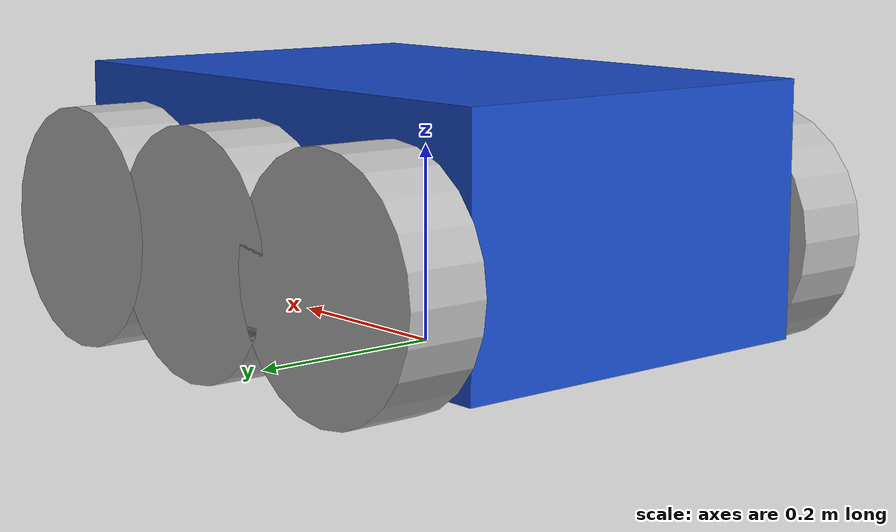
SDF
<?xml version="1.0"?>
<sdf version="1.8"><model name="flota_6">
<link name="body">
<inertial><pose>0 0 0.15 0 0 0</pose><mass>15</mass><inertia><ixx>0.28</ixx><iyy>0.53</iyy><izz>0.65</izz></inertia></inertial>
<collision name="ch"><pose>0 0 0.15 0 0 0</pose><geometry><box><size>0.6 0.4 0.25</size></box></geometry></collision>
<visual name="chv"><pose>0 0 0.15 0 0 0</pose><geometry><box><size>0.6 0.4 0.25</size></box></geometry><material><ambient>0.1 0.3 0.8 1</ambient></material></visual>
<collision name="r1c"><pose>0.2 0.24 0.12 1.5708 0 0</pose><geometry><cylinder><radius>0.12</radius><length>0.08</length></cylinder></geometry><surface><friction><ode><mu>0</mu><mu2>0</mu2></ode></friction></surface></collision><visual name="r1v"><pose>0.2 0.24 0.12 1.5708 0 0</pose><geometry><cylinder><radius>0.12</radius><length>0.08</length></cylinder></geometry></visual>
<collision name="r2c"><pose>0.0 0.24 0.12 1.5708 0 0</pose><geometry><cylinder><radius>0.12</radius><length>0.08</length></cylinder></geometry><surface><friction><ode><mu>0</mu><mu2>0</mu2></ode></friction></surface></collision><visual name="r2v"><pose>0.0 0.24 0.12 1.5708 0 0</pose><geometry><cylinder><radius>0.12</radius><length>0.08</length></cylinder></geometry></visual>
<collision name="r3c"><pose>-0.2 0.24 0.12 1.5708 0 0</pose><geometry><cylinder><radius>0.12</radius><length>0.08</length></cylinder></geometry><surface><friction><ode><mu>0</mu><mu2>0</mu2></ode></friction></surface></collision><visual name="r3v"><pose>-0.2 0.24 0.12 1.5708 0 0</pose><geometry><cylinder><radius>0.12</radius><length>0.08</length></cylinder></geometry></visual>
<collision name="r4c"><pose>0.2 -0.24 0.12 1.5708 0 0</pose><geometry><cylinder><radius>0.12</radius><length>0.08</length></cylinder></geometry><surface><friction><ode><mu>0</mu><mu2>0</mu2></ode></friction></surface></collision><visual name="r4v"><pose>0.2 -0.24 0.12 1.5708 0 0</pose><geometry><cylinder><radius>0.12</radius><length>0.08</length></cylinder></geometry></visual>
<collision name="r5c"><pose>0.0 -0.24 0.12 1.5708 0 0</pose><geometry><cylinder><radius>0.12</radius><length>0.08</length></cylinder></geometry><surface><friction><ode><mu>0</mu><mu2>0</mu2></ode></friction></surface></collision><visual name="r5v"><pose>0.0 -0.24 0.12 1.5708 0 0</pose><geometry><cylinder><radius>0.12</radius><length>0.08</length></cylinder></geometry></visual>
<collision name="r6c"><pose>-0.2 -0.24 0.12 1.5708 0 0</pose><geometry><cylinder><radius>0.12</radius><length>0.08</length></cylinder></geometry><surface><friction><ode><mu>0</mu><mu2>0</mu2></ode></friction></surface></collision><visual name="r6v"><pose>-0.2 -0.24 0.12 1.5708 0 0</pose><geometry><cylinder><radius>0.12</radius><length>0.08</length></cylinder></geometry></visual>
<sensor name="lidar" type="gpu_lidar"><pose>0 0 0.40 0 0 0</pose><topic>/model/flota_6/scan</topic><update_rate>5</update_rate><lidar><scan><horizontal><samples>360</samples><resolution>1</resolution><min_angle>-3.1416</min_angle><max_angle>3.1416</max_angle></horizontal></scan><range><min>0.12</min><max>12</max><resolution>0.01</resolution></range></lidar><always_on>1</always_on><visualize>false</visualize></sensor>
</link>
<plugin filename="gz-sim-velocity-control-system" name="gz::sim::systems::VelocityControl"/>
</model></sdf>
